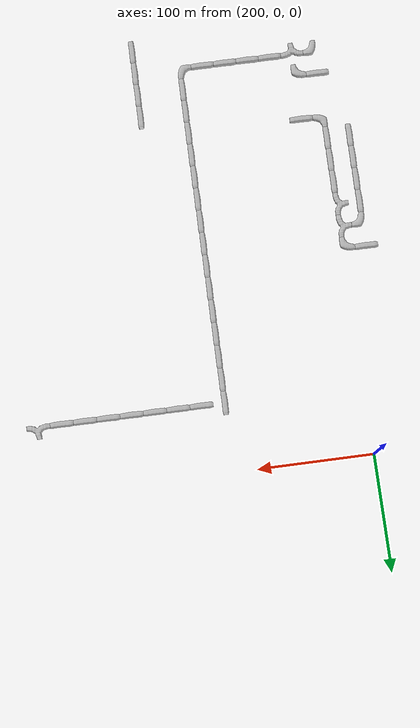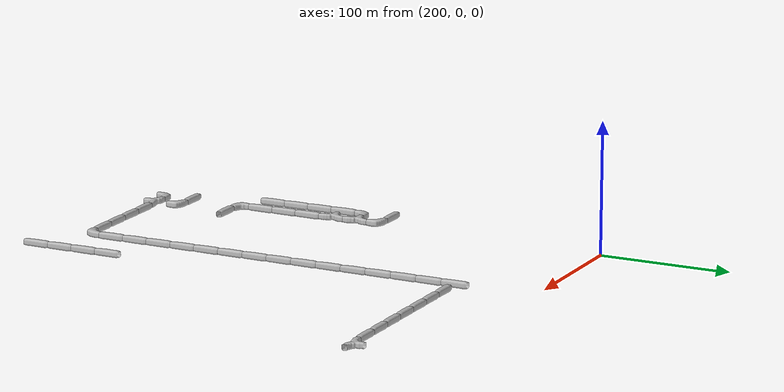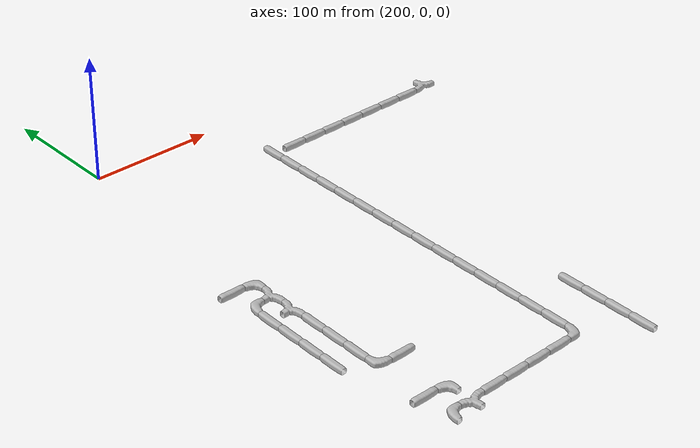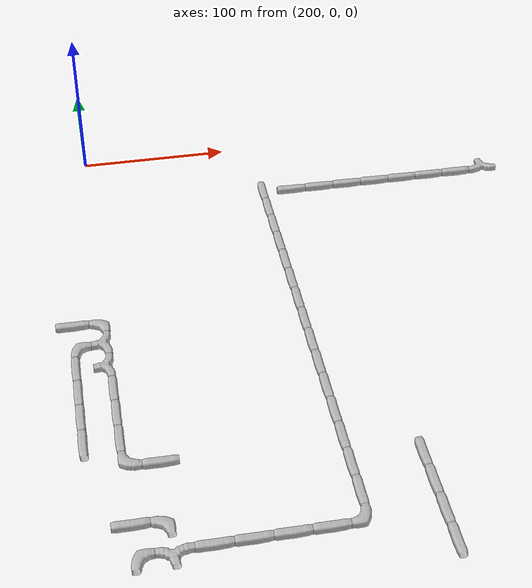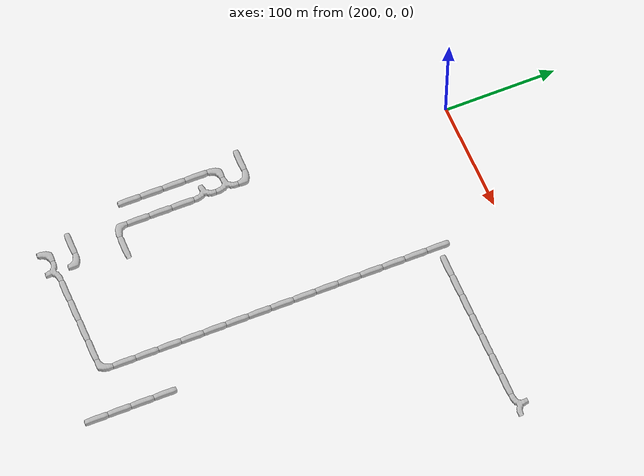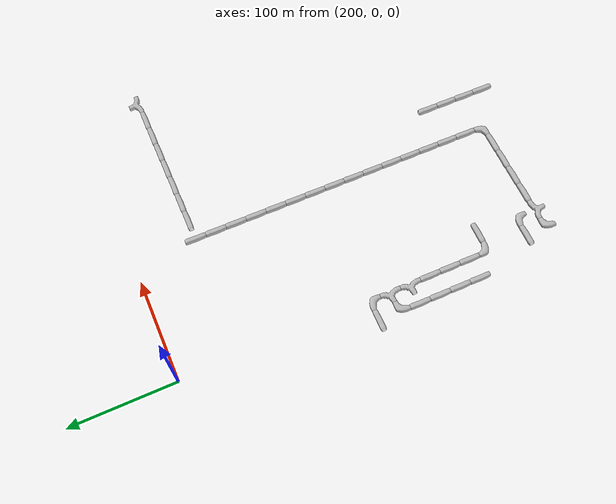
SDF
<sdf version="1.6">
 <world name="cave_8000_4">
  <include>
   <static>true</static>
   <name>cave_24_-3</name>
   <pose>480 -60 0 0 0 0.0</pose>
   <uri>model://cave_3way_20m</uri>
  </include>
  <include>
   <static>true</static>
   <name>cave_23_-3</name>
   <pose>460 -60 0 0 0 1.5707963267948966</pose>
   <uri>model://cave_straight_20m</uri>
  </include>
  <include>
   <static>true</static>
   <name>cave_22_-3</name>
   <pose>440 -60 0 0 0 1.5707963267948966</pose>
   <uri>model://cave_straight_20m</uri>
  </include>
  <include>
   <static>true</static>
   <name>cave_21_-3</name>
   <pose>420 -60 0 0 0 1.5707963267948966</pose>
   <uri>model://cave_straight_20m</uri>
  </include>
  <include>
   <static>true</static>
   <name>cave_20_-3</name>
   <pose>400 -60 0 0 0 1.5707963267948966</pose>
   <uri>model://cave_straight_20m</uri>
  </include>
  <include>
   <static>true</static>
   <name>cave_19_-3</name>
   <pose>380 -60 0 0 0 1.5707963267948966</pose>
   <uri>model://cave_straight_20m</uri>
  </include>
  <include>
   <static>true</static>
   <name>cave_18_-3</name>
   <pose>360 -60 0 0 0 1.5707963267948966</pose>
   <uri>model://cave_straight_20m</uri>
  </include>
  <include>
   <static>true</static>
   <name>cave_17_-3</name>
   <pose>340 -60 0 0 0 1.5707963267948966</pose>
   <uri>model://cave_straight_20m</uri>
  </include>
  <include>
   <static>true</static>
   <name>cave_16_-3</name>
   <pose>320 -60 0 0 0 0.0</pose>
   <uri>model://cave_straight_20m</uri>
  </include>
  <include>
   <static>true</static>
   <name>cave_16_-4</name>
   <pose>320 -80 0 0 0 0.0</pose>
   <uri>model://cave_straight_20m</uri>
  </include>
  <include>
   <static>true</static>
   <name>cave_16_-5</name>
   <pose>320 -100 0 0 0 0.0</pose>
   <uri>model://cave_straight_20m</uri>
  </include>
  <include>
   <static>true</static>
   <name>cave_16_-6</name>
   <pose>320 -120 0 0 0 0.0</pose>
   <uri>model://cave_straight_20m</uri>
  </include>
  <include>
   <static>true</static>
   <name>cave_16_-7</name>
   <pose>320 -140 0 0 0 0.0</pose>
   <uri>model://cave_straight_20m</uri>
  </include>
  <include>
   <static>true</static>
   <name>cave_16_-8</name>
   <pose>320 -160 0 0 0 0.0</pose>
   <uri>model://cave_straight_20m</uri>
  </include>
  <include>
   <static>true</static>
   <name>cave_16_-9</name>
   <pose>320 -180 0 0 0 0.0</pose>
   <uri>model://cave_straight_20m</uri>
  </include>
  <include>
   <static>true</static>
   <name>cave_16_-10</name>
   <pose>320 -200 0 0 0 0.0</pose>
   <uri>model://cave_straight_20m</uri>
  </include>
  <include>
   <static>true</static>
   <name>cave_16_-11</name>
   <pose>320 -220 0 0 0 0.0</pose>
   <uri>model://cave_straight_20m</uri>
  </include>
  <include>
   <static>true</static>
   <name>cave_16_-12</name>
   <pose>320 -240 0 0 0 0.0</pose>
   <uri>model://cave_straight_20m</uri>
  </include>
  <include>
   <static>true</static>
   <name>cave_16_-13</name>
   <pose>320 -260 0 0 0 0.0</pose>
   <uri>model://cave_straight_20m</uri>
  </include>
  <include>
   <static>true</static>
   <name>cave_16_-14</name>
   <pose>320 -280 0 0 0 0.0</pose>
   <uri>model://cave_straight_20m</uri>
  </include>
  <include>
   <static>true</static>
   <name>cave_16_-15</name>
   <pose>320 -300 0 0 0 0.0</pose>
   <uri>model://cave_straight_20m</uri>
  </include>
  <include>
   <static>true</static>
   <name>cave_16_-16</name>
   <pose>320 -320 0 0 0 0.0</pose>
   <uri>model://cave_straight_20m</uri>
  </include>
  <include>
   <static>true</static>
   <name>cave_16_-17</name>
   <pose>320 -340 0 0 0 0.0</pose>
   <uri>model://cave_straight_20m</uri>
  </include>
  <include>
   <static>true</static>
   <name>cave_16_-18</name>
   <pose>320 -360 0 0 0 1.5707963267948966</pose>
   <uri>model://cave_L_20m</uri>
  </include>
  <include>
   <static>true</static>
   <name>cave_15_-18</name>
   <pose>300 -360 0 0 0 1.5707963267948966</pose>
   <uri>model://cave_straight_20m</uri>
  </include>
  <include>
   <static>true</static>
   <name>cave_14_-18</name>
   <pose>280 -360 0 0 0 1.5707963267948966</pose>
   <uri>model://cave_straight_20m</uri>
  </include>
  <include>
   <static>true</static>
   <name>cave_13_-18</name>
   <pose>260 -360 0 0 0 1.5707963267948966</pose>
   <uri>model://cave_straight_20m</uri>
  </include>
  <include>
   <static>true</static>
   <name>cave_12_-18</name>
   <pose>240 -360 0 0 0 1.5707963267948966</pose>
   <uri>model://cave_straight_20m</uri>
  </include>
  <include>
   <static>true</static>
   <name>cave_11_-18</name>
   <pose>220 -360 0 0 0 3.141592653589793</pose>
   <uri>model://cave_3way_20m</uri>
  </include>
  <include>
   <static>true</static>
   <name>cave_18_-19</name>
   <pose>360 -380 0 0 0 0.0</pose>
   <uri>model://cave_straight_20m</uri>
  </include>
  <include>
   <static>true</static>
   <name>cave_18_-18</name>
   <pose>360 -360 0 0 0 0.0</pose>
   <uri>model://cave_straight_20m</uri>
  </include>
  <include>
   <static>true</static>
   <name>cave_18_-17</name>
   <pose>360 -340 0 0 0 0.0</pose>
   <uri>model://cave_straight_20m</uri>
  </include>
  <include>
   <static>true</static>
   <name>cave_18_-16</name>
   <pose>360 -320 0 0 0 0.0</pose>
   <uri>model://cave_straight_20m</uri>
  </include>
  <include>
   <static>true</static>
   <name>cave_10_-17</name>
   <pose>200 -340 0 0 0 1.5707963267948966</pose>
   <uri>model://cave_straight_20m</uri>
  </include>
  <include>
   <static>true</static>
   <name>cave_11_-17</name>
   <pose>220 -340 0 0 0 3.141592653589793</pose>
   <uri>model://cave_L_20m</uri>
  </include>
  <include>
   <static>true</static>
   <name>cave_9_-14</name>
   <pose>180 -280 0 0 0 0.0</pose>
   <uri>model://cave_straight_20m</uri>
  </include>
  <include>
   <static>true</static>
   <name>cave_9_-13</name>
   <pose>180 -260 0 0 0 0.0</pose>
   <uri>model://cave_straight_20m</uri>
  </include>
  <include>
   <static>true</static>
   <name>cave_9_-12</name>
   <pose>180 -240 0 0 0 0.0</pose>
   <uri>model://cave_straight_20m</uri>
  </include>
  <include>
   <static>true</static>
   <name>cave_9_-11</name>
   <pose>180 -220 0 0 0 0.0</pose>
   <uri>model://cave_straight_20m</uri>
  </include>
  <include>
   <static>true</static>
   <name>cave_9_-10</name>
   <pose>180 -200 0 0 0 -1.5707963267948966</pose>
   <uri>model://cave_L_20m</uri>
  </include>
  <include>
   <static>true</static>
   <name>cave_10_-10</name>
   <pose>200 -200 0 0 0 1.5707963267948966</pose>
   <uri>model://cave_3way_20m</uri>
  </include>
  <include>
   <static>true</static>
   <name>cave_10_-11</name>
   <pose>200 -220 0 0 0 1.5707963267948966</pose>
   <uri>model://cave_3way_20m</uri>
  </include>
  <include>
   <static>true</static>
   <name>cave_10_-12</name>
   <pose>200 -240 0 0 0 0.0</pose>
   <uri>model://cave_straight_20m</uri>
  </include>
  <include>
   <static>true</static>
   <name>cave_10_-13</name>
   <pose>200 -260 0 0 0 0.0</pose>
   <uri>model://cave_straight_20m</uri>
  </include>
  <include>
   <static>true</static>
   <name>cave_10_-14</name>
   <pose>200 -280 0 0 0 0.0</pose>
   <uri>model://cave_straight_20m</uri>
  </include>
  <include>
   <static>true</static>
   <name>cave_10_-15</name>
   <pose>200 -300 0 0 0 0.0</pose>
   <uri>model://cave_L_20m</uri>
  </include>
  <include>
   <static>true</static>
   <name>cave_11_-15</name>
   <pose>220 -300 0 0 0 1.5707963267948966</pose>
   <uri>model://cave_straight_20m</uri>
  </include>
  <include>
   <static>true</static>
   <name>cave_10_-9</name>
   <pose>200 -180 0 0 0 3.141592653589793</pose>
   <uri>model://cave_L_20m</uri>
  </include>
  <include>
   <static>true</static>
   <name>cave_9_-9</name>
   <pose>180 -180 0 0 0 1.5707963267948966</pose>
   <uri>model://cave_straight_20m</uri>
  </include>
  <include>
   <static>true</static>
   <name>cave_10_-18</name>
   <pose>200 -360 0 0 0 -1.5707963267948966</pose>
   <uri>model://cave_L_20m</uri>
  </include>
 </world>
</sdf>
